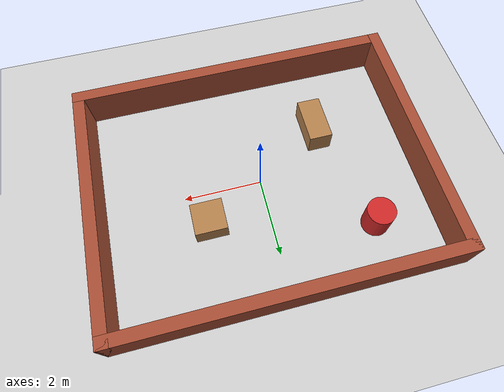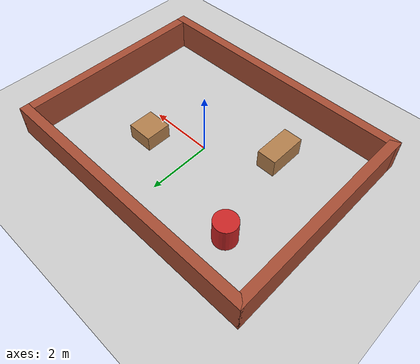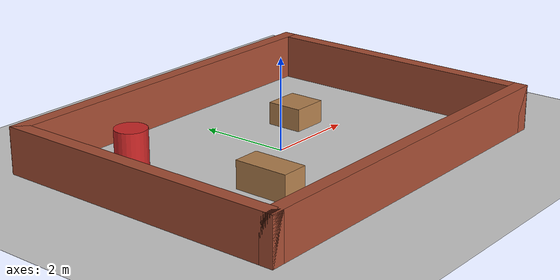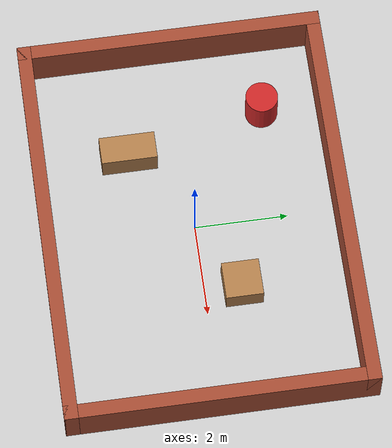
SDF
<?xml version="1.0" ?>
<sdf version="1.6">
  <world name="leap_room">

    <!-- 初始相机视角：位于房间西南角上方 1.05m，俯视 35° 看原点 -->
    <gui fullscreen="0">
      <camera name="user_camera">
        <pose>-0.55 -0.48 0.42 0 0.52 0.72</pose>
        <view_controller>orbit</view_controller>
        <projection_type>perspective</projection_type>
      </camera>
    </gui>

    <physics type="ode">
      <max_step_size>0.001</max_step_size>
      <real_time_update_rate>1000</real_time_update_rate>
      <real_time_factor>1.0</real_time_factor>
    </physics>

    <!-- ==================== 地面 ==================== -->
    <model name="ground_plane">
      <static>true</static>
      <link name="link">
        <collision name="collision">
          <geometry>
            <plane>
              <normal>0 0 1</normal>
              <size>100 100</size>
            </plane>
          </geometry>
          <surface>
            <friction>
              <ode>
                <mu>100</mu>
                <mu2>50</mu2>
              </ode>
            </friction>
          </surface>
        </collision>
        <visual name="visual">
          <cast_shadows>false</cast_shadows>
          <geometry>
            <plane>
              <normal>0 0 1</normal>
              <size>100 100</size>
            </plane>
          </geometry>
          <material>
            <script>
              <uri>file://media/materials/scripts/gazebo.material</uri>
              <name>Gazebo/Grey</name>
            </script>
          </material>
        </visual>
      </link>
    </model>

    <!-- ==================== 光照 ==================== -->
    <light type="directional" name="sun">
      <cast_shadows>true</cast_shadows>
      <pose>0 0 10 0 0 0</pose>
      <diffuse>0.8 0.8 0.8 1</diffuse>
      <specular>0.2 0.2 0.2 1</specular>
      <attenuation>
        <range>1000</range>
        <constant>0.9</constant>
        <linear>0.01</linear>
        <quadratic>0.001</quadratic>
      </attenuation>
      <direction>-0.5 0.1 -0.9</direction>
    </light>

    <!-- ==================== 四面墙（房间 8m x 6m，墙高 1m）==================== -->
    <model name="wall_south">
      <static>true</static>
      <pose>0 -3.15 0.5 0 0 0</pose>
      <link name="link">
        <collision name="collision"><geometry><box><size>8.6 0.3 1.0</size></box></geometry></collision>
        <visual name="visual">
          <geometry><box><size>8.6 0.3 1.0</size></box></geometry>
          <material><script><uri>file://media/materials/scripts/gazebo.material</uri><name>Gazebo/Bricks</name></script></material>
        </visual>
      </link>
    </model>

    <model name="wall_north">
      <static>true</static>
      <pose>0 3.15 0.5 0 0 0</pose>
      <link name="link">
        <collision name="collision"><geometry><box><size>8.6 0.3 1.0</size></box></geometry></collision>
        <visual name="visual">
          <geometry><box><size>8.6 0.3 1.0</size></box></geometry>
          <material><script><uri>file://media/materials/scripts/gazebo.material</uri><name>Gazebo/Bricks</name></script></material>
        </visual>
      </link>
    </model>

    <model name="wall_west">
      <static>true</static>
      <pose>-4.15 0 0.5 0 0 0</pose>
      <link name="link">
        <collision name="collision"><geometry><box><size>0.3 6.6 1.0</size></box></geometry></collision>
        <visual name="visual">
          <geometry><box><size>0.3 6.6 1.0</size></box></geometry>
          <material><script><uri>file://media/materials/scripts/gazebo.material</uri><name>Gazebo/Bricks</name></script></material>
        </visual>
      </link>
    </model>

    <model name="wall_east">
      <static>true</static>
      <pose>4.15 0 0.5 0 0 0</pose>
      <link name="link">
        <collision name="collision"><geometry><box><size>0.3 6.6 1.0</size></box></geometry></collision>
        <visual name="visual">
          <geometry><box><size>0.3 6.6 1.0</size></box></geometry>
          <material><script><uri>file://media/materials/scripts/gazebo.material</uri><name>Gazebo/Bricks</name></script></material>
        </visual>
      </link>
    </model>

    <!-- ==================== 室内障碍物 ==================== -->
    <model name="obstacle_box1">
      <static>true</static>
      <pose>1.5 0.8 0.25 0 0 0</pose>
      <link name="link">
        <collision name="collision"><geometry><box><size>0.8 0.8 0.5</size></box></geometry></collision>
        <visual name="visual">
          <geometry><box><size>0.8 0.8 0.5</size></box></geometry>
          <material><script><uri>file://media/materials/scripts/gazebo.material</uri><name>Gazebo/Wood</name></script></material>
        </visual>
      </link>
    </model>

    <model name="obstacle_box2">
      <static>true</static>
      <pose>-1.8 -1.2 0.3 0 0 0</pose>
      <link name="link">
        <collision name="collision"><geometry><box><size>0.6 1.2 0.6</size></box></geometry></collision>
        <visual name="visual">
          <geometry><box><size>0.6 1.2 0.6</size></box></geometry>
          <material><script><uri>file://media/materials/scripts/gazebo.material</uri><name>Gazebo/Wood</name></script></material>
        </visual>
      </link>
    </model>

    <model name="obstacle_cylinder">
      <static>true</static>
      <pose>-2.5 1.8 0.4 0 0 0</pose>
      <link name="link">
        <collision name="collision"><geometry><cylinder><radius>0.35</radius><length>0.8</length></cylinder></geometry></collision>
        <visual name="visual">
          <geometry><cylinder><radius>0.35</radius><length>0.8</length></cylinder></geometry>
          <material><script><uri>file://media/materials/scripts/gazebo.material</uri><name>Gazebo/Red</name></script></material>
        </visual>
      </link>
    </model>

  </world>
</sdf>
